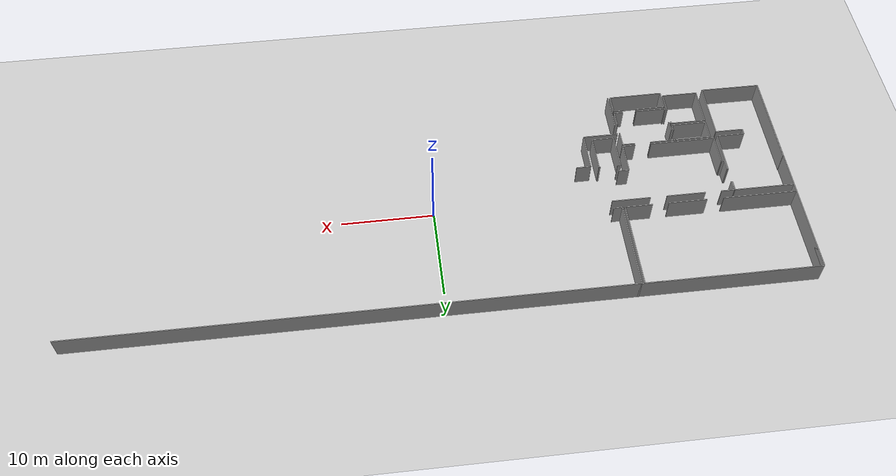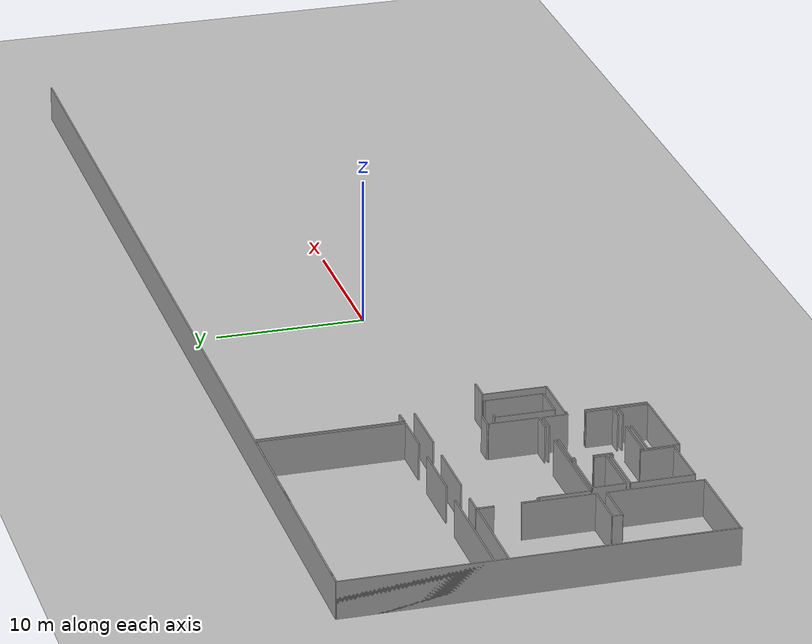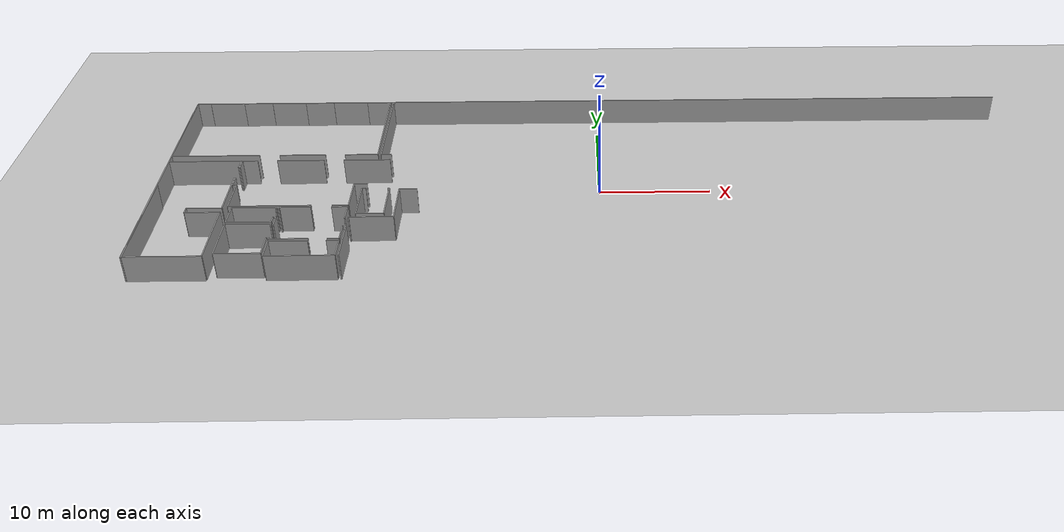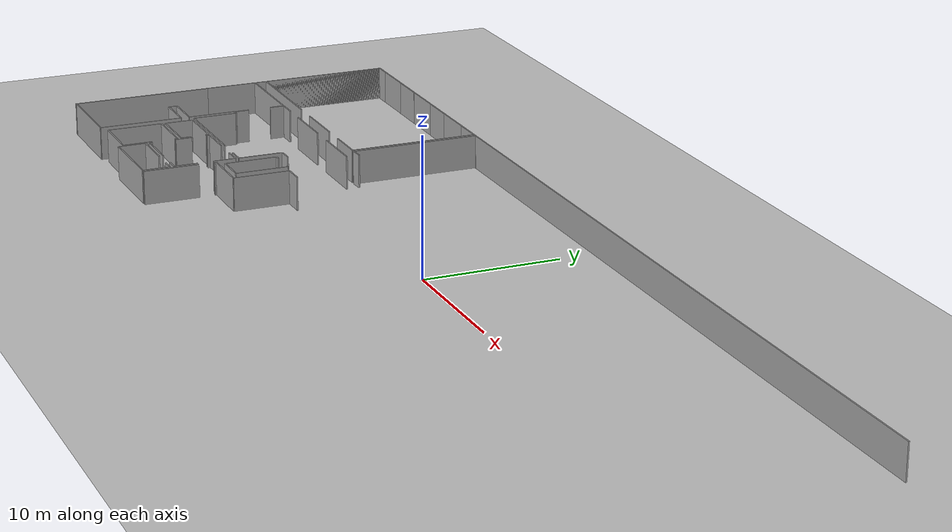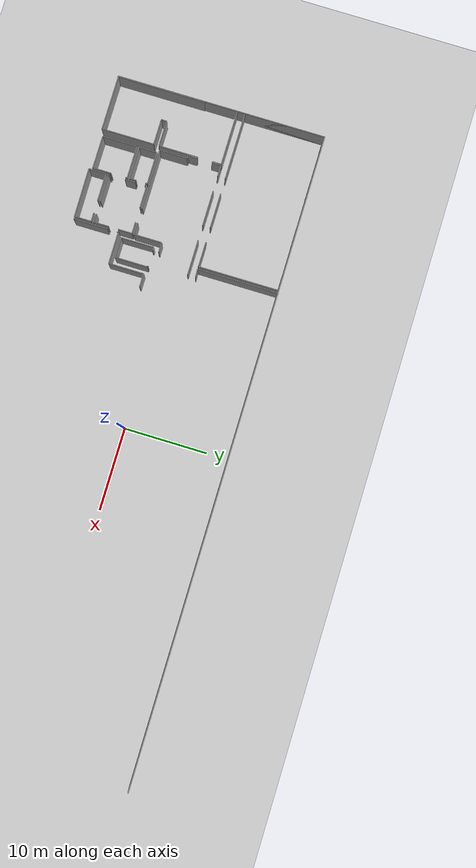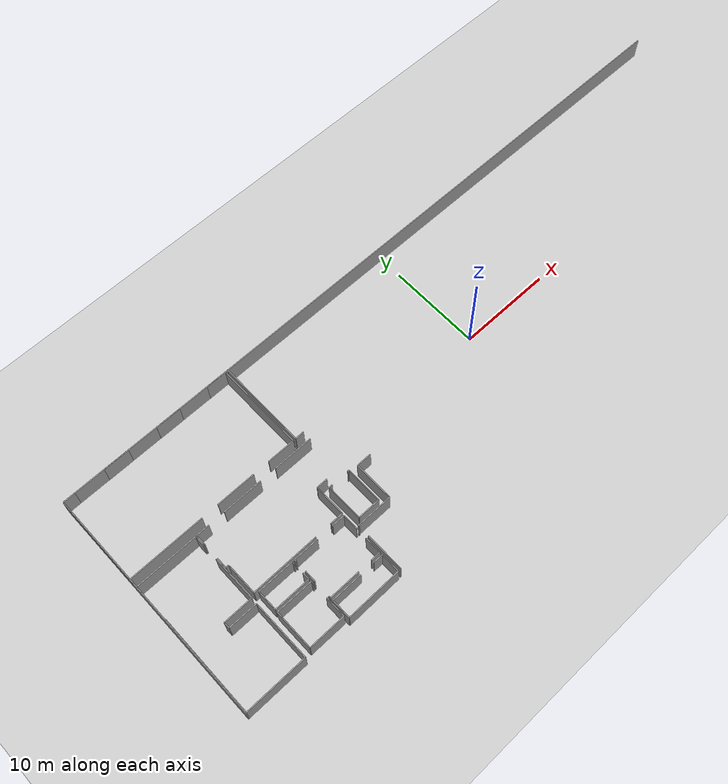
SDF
<sdf version="1.6">
 <world name="default">
  <model name="ground_plane">
   <static>1</static>
   <link name="link">
    <collision name="collision">
     <geometry><plane><normal>0 0 1</normal><size>100 100</size></plane></geometry>
     <surface><friction><ode><mu>100</mu><mu2>50</mu2></ode></friction></surface>
    </collision>
    <visual name="visual">
     <cast_shadows>0</cast_shadows>
     <geometry><plane><normal>0 0 1</normal><size>100 100</size></plane></geometry>
     <material>
      <script><uri>file://media/materials/scripts/gazebo.material</uri><name>Gazebo/Grey</name></script>
     </material>
    </visual>
   </link>
  </model>
  <model name="50052752">
   <static>1</static>
   <link name="Wall_0">
    <collision name="Wall_0_Collision">
     <geometry><box><size>2.99465783496 0.1 2.5</size></box></geometry>
     <pose>1.49732891748 0 1.25 0 0 0</pose>
    </collision>
    <visual name="Wall_0_Visual">
     <pose>1.49732891748 0 1.25 0 0 0</pose>
     <geometry><box><size>2.99465783496 0.1 2.5</size></box></geometry>
     <material>
      <script><uri>file://media/materials/scripts/gazebo.material</uri><name>Gazebo/Grey</name></script>
      <ambient>1 1 1 1</ambient>
     </material>
    </visual>
    <pose>18.7927468372 -9.64381336683 0 0 0 3.14159265359</pose>
   </link>
   <link name="Wall_1">
    <collision name="Wall_1_Collision">
     <geometry><box><size>4.19290164579 0.1 2.5</size></box></geometry>
     <pose>2.0964508229 0 1.25 0 0 0</pose>
    </collision>
    <visual name="Wall_1_Visual">
     <pose>2.0964508229 0 1.25 0 0 0</pose>
     <geometry><box><size>4.19290164579 0.1 2.5</size></box></geometry>
     <material>
      <script><uri>file://media/materials/scripts/gazebo.material</uri><name>Gazebo/Grey</name></script>
      <ambient>1 1 1 1</ambient>
     </material>
    </visual>
    <pose>14.0342862944 -9.64381336683 0 0 0 3.14159265359</pose>
   </link>
   <link name="Wall_2">
    <collision name="Wall_2_Collision">
     <geometry><box><size>8.03228139632 0.1 2.5</size></box></geometry>
     <pose>4.01614069816 0 1.25 0 0 0</pose>
    </collision>
    <visual name="Wall_2_Visual">
     <pose>4.01614069816 0 1.25 0 0 0</pose>
     <geometry><box><size>8.03228139632 0.1 2.5</size></box></geometry>
     <material>
      <script><uri>file://media/materials/scripts/gazebo.material</uri><name>Gazebo/Grey</name></script>
      <ambient>1 1 1 1</ambient>
     </material>
    </visual>
    <pose>8.03228139632 -9.64381336683 0 0 0 3.14159265359</pose>
   </link>
   <link name="Wall_3">
    <collision name="Wall_3_Collision">
     <geometry><box><size>9.63277373837 0.1 2.5</size></box></geometry>
     <pose>4.81638686919 0 1.25 0 0 0</pose>
    </collision>
    <visual name="Wall_3_Visual">
     <pose>4.81638686919 0 1.25 0 0 0</pose>
     <geometry><box><size>9.63277373837 0.1 2.5</size></box></geometry>
     <material>
      <script><uri>file://media/materials/scripts/gazebo.material</uri><name>Gazebo/Grey</name></script>
      <ambient>1 1 1 1</ambient>
     </material>
    </visual>
    <pose>0.0 -9.64381336683 0 0 0 1.57079632679</pose>
   </link>
   <link name="Wall_4">
    <collision name="Wall_4_Collision">
     <geometry><box><size>1.27323714898 0.1 2.5</size></box></geometry>
     <pose>0.636618574492 0 1.25 0 0 0</pose>
    </collision>
    <visual name="Wall_4_Visual">
     <pose>0.636618574492 0 1.25 0 0 0</pose>
     <geometry><box><size>1.27323714898 0.1 2.5</size></box></geometry>
     <material>
      <script><uri>file://media/materials/scripts/gazebo.material</uri><name>Gazebo/Grey</name></script>
      <ambient>1 1 1 1</ambient>
     </material>
    </visual>
    <pose>0.0 -0.0110396284594 0 0 0 0.0</pose>
   </link>
   <link name="Wall_5">
    <collision name="Wall_5_Collision">
     <geometry><box><size>2.74975573236 0.1 2.5</size></box></geometry>
     <pose>1.37487786618 0 1.25 0 0 0</pose>
    </collision>
    <visual name="Wall_5_Visual">
     <pose>1.37487786618 0 1.25 0 0 0</pose>
     <geometry><box><size>2.74975573236 0.1 2.5</size></box></geometry>
     <material>
      <script><uri>file://media/materials/scripts/gazebo.material</uri><name>Gazebo/Grey</name></script>
      <ambient>1 1 1 1</ambient>
     </material>
    </visual>
    <pose>4.53513012803 -0.0110396284594 0 0 0 0.0</pose>
   </link>
   <link name="Wall_6">
    <collision name="Wall_6_Collision">
     <geometry><box><size>2.73516312003 0.1 2.5</size></box></geometry>
     <pose>1.36758156001 0 1.25 0 0 0</pose>
    </collision>
    <visual name="Wall_6_Visual">
     <pose>1.36758156001 0 1.25 0 0 0</pose>
     <geometry><box><size>2.73516312003 0.1 2.5</size></box></geometry>
     <material>
      <script><uri>file://media/materials/scripts/gazebo.material</uri><name>Gazebo/Grey</name></script>
      <ambient>1 1 1 1</ambient>
     </material>
    </visual>
    <pose>10.5278718896 -0.0110396284594 0 0 0 0.0</pose>
   </link>
   <link name="Wall_7">
    <collision name="Wall_7_Collision">
     <geometry><box><size>2.25639854328 0.1 2.5</size></box></geometry>
     <pose>1.12819927164 0 1.25 0 0 0</pose>
    </collision>
    <visual name="Wall_7_Visual">
     <pose>1.12819927164 0 1.25 0 0 0</pose>
     <geometry><box><size>2.25639854328 0.1 2.5</size></box></geometry>
     <material>
      <script><uri>file://media/materials/scripts/gazebo.material</uri><name>Gazebo/Grey</name></script>
      <ambient>1 1 1 1</ambient>
     </material>
    </visual>
    <pose>16.5350793711 -0.0110396284594 0 0 0 0.0</pose>
   </link>
   <link name="Wall_8">
    <collision name="Wall_8_Collision">
     <geometry><box><size>9.63277382195 0.1 2.5</size></box></geometry>
     <pose>4.81638691098 0 1.25 0 0 0</pose>
    </collision>
    <visual name="Wall_8_Visual">
     <pose>4.81638691098 0 1.25 0 0 0</pose>
     <geometry><box><size>9.63277382195 0.1 2.5</size></box></geometry>
     <material>
      <script><uri>file://media/materials/scripts/gazebo.material</uri><name>Gazebo/Grey</name></script>
      <ambient>1 1 1 1</ambient>
     </material>
    </visual>
    <pose>18.7914779144 -0.0110396284594 0 0 0 -1.57066459705</pose>
   </link>
   <link name="Wall_9">
    <collision name="Wall_9_Collision">
     <geometry><box><size>10.5219079523 0.1 2.5</size></box></geometry>
     <pose>5.26095397617 0 1.25 0 0 0</pose>
    </collision>
    <visual name="Wall_9_Visual">
     <pose>5.26095397617 0 1.25 0 0 0</pose>
     <geometry><box><size>10.5219079523 0.1 2.5</size></box></geometry>
     <material>
      <script><uri>file://media/materials/scripts/gazebo.material</uri><name>Gazebo/Grey</name></script>
      <ambient>1 1 1 1</ambient>
     </material>
    </visual>
    <pose>0.0477114977096 -25.0307713782 0 0 0 1.57079632679</pose>
   </link>
   <link name="Wall_10">
    <collision name="Wall_10_Collision">
     <geometry><box><size>6.49993020925 0.1 2.5</size></box></geometry>
     <pose>3.24996510462 0 1.25 0 0 0</pose>
    </collision>
    <visual name="Wall_10_Visual">
     <pose>3.24996510462 0 1.25 0 0 0</pose>
     <geometry><box><size>6.49993020925 0.1 2.5</size></box></geometry>
     <material>
      <script><uri>file://media/materials/scripts/gazebo.material</uri><name>Gazebo/Grey</name></script>
      <ambient>1 1 1 1</ambient>
     </material>
    </visual>
    <pose>0.0477114977096 -10.5749489259 0 0 0 0.0</pose>
   </link>
   <link name="Wall_11">
    <collision name="Wall_11_Collision">
     <geometry><box><size>1.074650729 0.1 2.5</size></box></geometry>
     <pose>0.537325364498 0 1.25 0 0 0</pose>
    </collision>
    <visual name="Wall_11_Visual">
     <pose>0.537325364498 0 1.25 0 0 0</pose>
     <geometry><box><size>1.074650729 0.1 2.5</size></box></geometry>
     <material>
      <script><uri>file://media/materials/scripts/gazebo.material</uri><name>Gazebo/Grey</name></script>
      <ambient>1 1 1 1</ambient>
     </material>
    </visual>
    <pose>6.54764170695 -10.5749489259 0 0 0 -1.57079632679</pose>
   </link>
   <link name="Wall_12">
    <collision name="Wall_12_Collision">
     <geometry><box><size>4.73371654802 0.1 2.5</size></box></geometry>
     <pose>2.36685827401 0 1.25 0 0 0</pose>
    </collision>
    <visual name="Wall_12_Visual">
     <pose>2.36685827401 0 1.25 0 0 0</pose>
     <geometry><box><size>4.73371654802 0.1 2.5</size></box></geometry>
     <material>
      <script><uri>file://media/materials/scripts/gazebo.material</uri><name>Gazebo/Grey</name></script>
      <ambient>1 1 1 1</ambient>
     </material>
    </visual>
    <pose>6.54764170695 -13.3843440304 0 0 0 -1.57079632679</pose>
   </link>
   <link name="Wall_13">
    <collision name="Wall_13_Collision">
     <geometry><box><size>3.04655677795 0.1 2.5</size></box></geometry>
     <pose>1.52327838898 0 1.25 0 0 0</pose>
    </collision>
    <visual name="Wall_13_Visual">
     <pose>1.52327838898 0 1.25 0 0 0</pose>
     <geometry><box><size>3.04655677795 0.1 2.5</size></box></geometry>
     <material>
      <script><uri>file://media/materials/scripts/gazebo.material</uri><name>Gazebo/Grey</name></script>
      <ambient>1 1 1 1</ambient>
     </material>
    </visual>
    <pose>6.54764170695 -18.1180605784 0 0 0 3.14159265359</pose>
   </link>
   <link name="Wall_14">
    <collision name="Wall_14_Collision">
     <geometry><box><size>0.639917773802 0.1 2.5</size></box></geometry>
     <pose>0.319958886901 0 1.25 0 0 0</pose>
    </collision>
    <visual name="Wall_14_Visual">
     <pose>0.319958886901 0 1.25 0 0 0</pose>
     <geometry><box><size>0.639917773802 0.1 2.5</size></box></geometry>
     <material>
      <script><uri>file://media/materials/scripts/gazebo.material</uri><name>Gazebo/Grey</name></script>
      <ambient>1 1 1 1</ambient>
     </material>
    </visual>
    <pose>3.501084929 -18.1180605784 0 0 0 -1.57079632679</pose>
   </link>
   <link name="Wall_15">
    <collision name="Wall_15_Collision">
     <geometry><box><size>3.03437511896 0.1 2.5</size></box></geometry>
     <pose>1.51718755948 0 1.25 0 0 0</pose>
    </collision>
    <visual name="Wall_15_Visual">
     <pose>1.51718755948 0 1.25 0 0 0</pose>
     <geometry><box><size>3.03437511896 0.1 2.5</size></box></geometry>
     <material>
      <script><uri>file://media/materials/scripts/gazebo.material</uri><name>Gazebo/Grey</name></script>
      <ambient>1 1 1 1</ambient>
     </material>
    </visual>
    <pose>3.501084929 -18.7579783522 0 0 0 0.0</pose>
   </link>
   <link name="Wall_16">
    <collision name="Wall_16_Collision">
     <geometry><box><size>6.27837628637 0.1 2.5</size></box></geometry>
     <pose>3.13918814319 0 1.25 0 0 0</pose>
    </collision>
    <visual name="Wall_16_Visual">
     <pose>3.13918814319 0 1.25 0 0 0</pose>
     <geometry><box><size>6.27837628637 0.1 2.5</size></box></geometry>
     <material>
      <script><uri>file://media/materials/scripts/gazebo.material</uri><name>Gazebo/Grey</name></script>
      <ambient>1 1 1 1</ambient>
     </material>
    </visual>
    <pose>6.53546004797 -18.7579783522 0 0 0 -1.57079632679</pose>
   </link>
   <link name="Wall_17">
    <collision name="Wall_17_Collision">
     <geometry><box><size>6.48775095269 0.1 2.5</size></box></geometry>
     <pose>3.24387547635 0 1.25 0 0 0</pose>
    </collision>
    <visual name="Wall_17_Visual">
     <pose>3.24387547635 0 1.25 0 0 0</pose>
     <geometry><box><size>6.48775095269 0.1 2.5</size></box></geometry>
     <material>
      <script><uri>file://media/materials/scripts/gazebo.material</uri><name>Gazebo/Grey</name></script>
      <ambient>1 1 1 1</ambient>
     </material>
    </visual>
    <pose>6.53546004797 -25.0363546385 0 0 0 3.1407320686</pose>
   </link>
   <link name="Wall_18">
    <collision name="Wall_18_Collision">
     <geometry><box><size>1.14647176012 0.1 2.5</size></box></geometry>
     <pose>0.573235880061 0 1.25 0 0 0</pose>
    </collision>
    <visual name="Wall_18_Visual">
     <pose>0.573235880061 0 1.25 0 0 0</pose>
     <geometry><box><size>1.14647176012 0.1 2.5</size></box></geometry>
     <material>
      <script><uri>file://media/materials/scripts/gazebo.material</uri><name>Gazebo/Grey</name></script>
      <ambient>1 1 1 1</ambient>
     </material>
    </visual>
    <pose>6.65664217646 -14.5567018158 0 0 0 1.57079632679</pose>
   </link>
   <link name="Wall_19">
    <collision name="Wall_19_Collision">
     <geometry><box><size>1.11728653546 0.1 2.5</size></box></geometry>
     <pose>0.55864326773 0 1.25 0 0 0</pose>
    </collision>
    <visual name="Wall_19_Visual">
     <pose>0.55864326773 0 1.25 0 0 0</pose>
     <geometry><box><size>1.11728653546 0.1 2.5</size></box></geometry>
     <material>
      <script><uri>file://media/materials/scripts/gazebo.material</uri><name>Gazebo/Grey</name></script>
      <ambient>1 1 1 1</ambient>
     </material>
    </visual>
    <pose>6.65664217646 -11.6824647557 0 0 0 1.57079632679</pose>
   </link>
   <link name="Wall_20">
    <collision name="Wall_20_Collision">
     <geometry><box><size>1.38274518761 0.1 2.5</size></box></geometry>
     <pose>0.691372593805 0 1.25 0 0 0</pose>
    </collision>
    <visual name="Wall_20_Visual">
     <pose>0.691372593805 0 1.25 0 0 0</pose>
     <geometry><box><size>1.38274518761 0.1 2.5</size></box></geometry>
     <material>
      <script><uri>file://media/materials/scripts/gazebo.material</uri><name>Gazebo/Grey</name></script>
      <ambient>1 1 1 1</ambient>
     </material>
    </visual>
    <pose>6.65664217646 -10.5651782202 0 0 0 0.0</pose>
   </link>
   <link name="Wall_21">
    <collision name="Wall_21_Collision">
     <geometry><box><size>4.23135000698 0.1 2.5</size></box></geometry>
     <pose>2.11567500349 0 1.25 0 0 0</pose>
    </collision>
    <visual name="Wall_21_Visual">
     <pose>2.11567500349 0 1.25 0 0 0</pose>
     <geometry><box><size>4.23135000698 0.1 2.5</size></box></geometry>
     <material>
      <script><uri>file://media/materials/scripts/gazebo.material</uri><name>Gazebo/Grey</name></script>
      <ambient>1 1 1 1</ambient>
     </material>
    </visual>
    <pose>9.80306317967 -10.5651782202 0 0 0 0.0</pose>
   </link>
   <link name="Wall_22">
    <collision name="Wall_22_Collision">
     <geometry><box><size>4.20076896722 0.1 2.5</size></box></geometry>
     <pose>2.10038448361 0 1.25 0 0 0</pose>
    </collision>
    <visual name="Wall_22_Visual">
     <pose>2.10038448361 0 1.25 0 0 0</pose>
     <geometry><box><size>4.20076896722 0.1 2.5</size></box></geometry>
     <material>
      <script><uri>file://media/materials/scripts/gazebo.material</uri><name>Gazebo/Grey</name></script>
      <ambient>1 1 1 1</ambient>
     </material>
    </visual>
    <pose>15.8241019199 -10.5651782202 0 0 0 0.0</pose>
   </link>
   <link name="Wall_43">
    <collision name="Wall_43_Collision">
     <geometry><box><size>1.16956615529 0.1 2.5</size></box></geometry>
     <pose>0.584783077645 0 1.25 0 0 0</pose>
    </collision>
    <visual name="Wall_43_Visual">
     <pose>0.584783077645 0 1.25 0 0 0</pose>
     <geometry><box><size>1.16956615529 0.1 2.5</size></box></geometry>
     <material>
      <script><uri>file://media/materials/scripts/gazebo.material</uri><name>Gazebo/Grey</name></script>
      <ambient>1 1 1 1</ambient>
     </material>
    </visual>
    <pose>18.4964533607 -14.5209181925 0 0 0 3.14159265359</pose>
   </link>
   <link name="Wall_44">
    <collision name="Wall_44_Collision">
     <geometry><box><size>0.32743984575 0.1 2.5</size></box></geometry>
     <pose>0.163719922875 0 1.25 0 0 0</pose>
    </collision>
    <visual name="Wall_44_Visual">
     <pose>0.163719922875 0 1.25 0 0 0</pose>
     <geometry><box><size>0.32743984575 0.1 2.5</size></box></geometry>
     <material>
      <script><uri>file://media/materials/scripts/gazebo.material</uri><name>Gazebo/Grey</name></script>
      <ambient>1 1 1 1</ambient>
     </material>
    </visual>
    <pose>6.98212087759 -14.5209181925 0 0 0 -3.03209090757</pose>
   </link>
   <link name="Wall_45">
    <collision name="Wall_45_Collision">
     <geometry><box><size>9.65650259495 0.1 2.5</size></box></geometry>
     <pose>4.82825129747 0 1.25 0 0 0</pose>
    </collision>
    <visual name="Wall_45_Visual">
     <pose>4.82825129747 0 1.25 0 0 0</pose>
     <geometry><box><size>9.65650259495 0.1 2.5</size></box></geometry>
     <material>
      <script><uri>file://media/materials/scripts/gazebo.material</uri><name>Gazebo/Grey</name></script>
      <ambient>1 1 1 1</ambient>
     </material>
    </visual>
    <pose>19.0845990838 -9.65650259495 0 0 0 1.57079632679</pose>
   </link>
   <link name="Wall_46">
    <collision name="Wall_46_Collision">
     <geometry><box><size>0.190338421714 0.1 2.5</size></box></geometry>
     <pose>0.0951692108569 0 1.25 0 0 0</pose>
    </collision>
    <visual name="Wall_46_Visual">
     <pose>0.0951692108569 0 1.25 0 0 0</pose>
     <geometry><box><size>0.190338421714 0.1 2.5</size></box></geometry>
     <material>
      <script><uri>file://media/materials/scripts/gazebo.material</uri><name>Gazebo/Grey</name></script>
      <ambient>1 1 1 1</ambient>
     </material>
    </visual>
    <pose>19.0845990838 -0.0 0 0 0 0.0</pose>
   </link>
   <link name="Wall_52">
    <collision name="Wall_52_Collision">
     <geometry><box><size>0.957011405348 0.1 2.5</size></box></geometry>
     <pose>0.478505702674 0 1.25 0 0 0</pose>
    </collision>
    <visual name="Wall_52_Visual">
     <pose>0.478505702674 0 1.25 0 0 0</pose>
     <geometry><box><size>0.957011405348 0.1 2.5</size></box></geometry>
     <material>
      <script><uri>file://media/materials/scripts/gazebo.material</uri><name>Gazebo/Grey</name></script>
      <ambient>1 1 1 1</ambient>
     </material>
    </visual>
    <pose>20.0407324222 -9.61551638814 0 0 0 -3.09875225873</pose>
   </link>
   <link name="Wall_159">
    <collision name="Wall_159_Collision">
     <geometry><box><size>2.38468663951 0.1 2.5</size></box></geometry>
     <pose>1.19234331976 0 1.25 0 0 0</pose>
    </collision>
    <visual name="Wall_159_Visual">
     <pose>1.19234331976 0 1.25 0 0 0</pose>
     <geometry><box><size>2.38468663951 0.1 2.5</size></box></geometry>
     <material>
      <script><uri>file://media/materials/scripts/gazebo.material</uri><name>Gazebo/Grey</name></script>
      <ambient>1 1 1 1</ambient>
     </material>
    </visual>
    <pose>18.1310035911 -19.1664446052 0 0 0 0.0</pose>
   </link>
   <link name="Wall_160">
    <collision name="Wall_160_Collision">
     <geometry><box><size>3.90625198269 0.1 2.5</size></box></geometry>
     <pose>1.95312599135 0 1.25 0 0 0</pose>
    </collision>
    <visual name="Wall_160_Visual">
     <pose>1.95312599135 0 1.25 0 0 0</pose>
     <geometry><box><size>3.90625198269 0.1 2.5</size></box></geometry>
     <material>
      <script><uri>file://media/materials/scripts/gazebo.material</uri><name>Gazebo/Grey</name></script>
      <ambient>1 1 1 1</ambient>
     </material>
    </visual>
    <pose>20.5156902306 -19.1664446052 0 0 0 1.57079632679</pose>
   </link>
   <link name="Wall_161">
    <collision name="Wall_161_Collision">
     <geometry><box><size>0.148717753499 0.1 2.5</size></box></geometry>
     <pose>0.0743588767495 0 1.25 0 0 0</pose>
    </collision>
    <visual name="Wall_161_Visual">
     <pose>0.0743588767495 0 1.25 0 0 0</pose>
     <geometry><box><size>0.148717753499 0.1 2.5</size></box></geometry>
     <material>
      <script><uri>file://media/materials/scripts/gazebo.material</uri><name>Gazebo/Grey</name></script>
      <ambient>1 1 1 1</ambient>
     </material>
    </visual>
    <pose>20.5156902306 -15.2601926225 0 0 0 3.14159265359</pose>
   </link>
   <link name="Wall_162">
    <collision name="Wall_162_Collision">
     <geometry><box><size>0.362785031787 0.1 2.5</size></box></geometry>
     <pose>0.181392515893 0 1.25 0 0 0</pose>
    </collision>
    <visual name="Wall_162_Visual">
     <pose>0.181392515893 0 1.25 0 0 0</pose>
     <geometry><box><size>0.362785031787 0.1 2.5</size></box></geometry>
     <material>
      <script><uri>file://media/materials/scripts/gazebo.material</uri><name>Gazebo/Grey</name></script>
      <ambient>1 1 1 1</ambient>
     </material>
    </visual>
    <pose>18.472216935 -15.2601926225 0 0 0 3.14159265359</pose>
   </link>
   <link name="Wall_163">
    <collision name="Wall_163_Collision">
     <geometry><box><size>3.90631154543 0.1 2.5</size></box></geometry>
     <pose>1.95315577272 0 1.25 0 0 0</pose>
    </collision>
    <visual name="Wall_163_Visual">
     <pose>1.95315577272 0 1.25 0 0 0</pose>
     <geometry><box><size>3.90631154543 0.1 2.5</size></box></geometry>
     <material>
      <script><uri>file://media/materials/scripts/gazebo.material</uri><name>Gazebo/Grey</name></script>
      <ambient>1 1 1 1</ambient>
     </material>
    </visual>
    <pose>18.1094319033 -15.2601926225 0 0 0 -1.56527403366</pose>
   </link>
   <link name="Wall_164">
    <collision name="Wall_164_Collision">
     <geometry><box><size>3.29577321812 0.1 2.5</size></box></geometry>
     <pose>1.64788660906 0 1.25 0 0 0</pose>
    </collision>
    <visual name="Wall_164_Visual">
     <pose>1.64788660906 0 1.25 0 0 0</pose>
     <geometry><box><size>3.29577321812 0.1 2.5</size></box></geometry>
     <material>
      <script><uri>file://media/materials/scripts/gazebo.material</uri><name>Gazebo/Grey</name></script>
      <ambient>1 1 1 1</ambient>
     </material>
    </visual>
    <pose>6.9880848148 -17.8910502874 0 0 0 1.57079632679</pose>
   </link>
   <link name="Wall_165">
    <collision name="Wall_165_Collision">
     <geometry><box><size>3.27179057698 0.1 2.5</size></box></geometry>
     <pose>1.63589528849 0 1.25 0 0 0</pose>
    </collision>
    <visual name="Wall_165_Visual">
     <pose>1.63589528849 0 1.25 0 0 0</pose>
     <geometry><box><size>3.27179057698 0.1 2.5</size></box></geometry>
     <material>
      <script><uri>file://media/materials/scripts/gazebo.material</uri><name>Gazebo/Grey</name></script>
      <ambient>1 1 1 1</ambient>
     </material>
    </visual>
    <pose>17.3334856041 -14.5952770693 0 0 0 -1.57079632679</pose>
   </link>
   <link name="Wall_166">
    <collision name="Wall_166_Collision">
     <geometry><box><size>1.39936807644 0.1 2.5</size></box></geometry>
     <pose>0.69968403822 0 1.25 0 0 0</pose>
    </collision>
    <visual name="Wall_166_Visual">
     <pose>0.69968403822 0 1.25 0 0 0</pose>
     <geometry><box><size>1.39936807644 0.1 2.5</size></box></geometry>
     <material>
      <script><uri>file://media/materials/scripts/gazebo.material</uri><name>Gazebo/Grey</name></script>
      <ambient>1 1 1 1</ambient>
     </material>
    </visual>
    <pose>17.3334856041 -17.8670676463 0 0 0 3.14159265359</pose>
   </link>
   <link name="Wall_167">
    <collision name="Wall_167_Collision">
     <geometry><box><size>7.16145982807 0.1 2.5</size></box></geometry>
     <pose>3.58072991403 0 1.25 0 0 0</pose>
    </collision>
    <visual name="Wall_167_Visual">
     <pose>3.58072991403 0 1.25 0 0 0</pose>
     <geometry><box><size>7.16145982807 0.1 2.5</size></box></geometry>
     <material>
      <script><uri>file://media/materials/scripts/gazebo.material</uri><name>Gazebo/Grey</name></script>
      <ambient>1 1 1 1</ambient>
     </material>
    </visual>
    <pose>14.1495044856 -17.8670676463 0 0 0 -3.13824379923</pose>
   </link>
   <link name="Wall_168">
    <collision name="Wall_168_Collision">
     <geometry><box><size>0.208610910198 0.1 2.5</size></box></geometry>
     <pose>0.104305455099 0 1.25 0 0 0</pose>
    </collision>
    <visual name="Wall_168_Visual">
     <pose>0.104305455099 0 1.25 0 0 0</pose>
     <geometry><box><size>0.208610910198 0.1 2.5</size></box></geometry>
     <material>
      <script><uri>file://media/materials/scripts/gazebo.material</uri><name>Gazebo/Grey</name></script>
      <ambient>1 1 1 1</ambient>
     </material>
    </visual>
    <pose>11.4499980966 -22.7508977629 0 0 0 1.57079632679</pose>
   </link>
   <link name="Wall_169">
    <collision name="Wall_169_Collision">
     <geometry><box><size>1.23580392605 0.1 2.5</size></box></geometry>
     <pose>0.617901963024 0 1.25 0 0 0</pose>
    </collision>
    <visual name="Wall_169_Visual">
     <pose>0.617901963024 0 1.25 0 0 0</pose>
     <geometry><box><size>1.23580392605 0.1 2.5</size></box></geometry>
     <material>
      <script><uri>file://media/materials/scripts/gazebo.material</uri><name>Gazebo/Grey</name></script>
      <ambient>1 1 1 1</ambient>
     </material>
    </visual>
    <pose>11.4499980966 -20.7440963366 0 0 0 1.57079632679</pose>
   </link>
   <link name="Wall_170">
    <collision name="Wall_170_Collision">
     <geometry><box><size>0.224853122185 0.1 2.5</size></box></geometry>
     <pose>0.112426561092 0 1.25 0 0 0</pose>
    </collision>
    <visual name="Wall_170_Visual">
     <pose>0.112426561092 0 1.25 0 0 0</pose>
     <geometry><box><size>0.224853122185 0.1 2.5</size></box></geometry>
     <material>
      <script><uri>file://media/materials/scripts/gazebo.material</uri><name>Gazebo/Grey</name></script>
      <ambient>1 1 1 1</ambient>
     </material>
    </visual>
    <pose>11.4499980966 -18.335427056 0 0 0 1.57079632679</pose>
   </link>
   <link name="Wall_171">
    <collision name="Wall_171_Collision">
     <geometry><box><size>2.68364485388 0.1 2.5</size></box></geometry>
     <pose>1.34182242694 0 1.25 0 0 0</pose>
    </collision>
    <visual name="Wall_171_Visual">
     <pose>1.34182242694 0 1.25 0 0 0</pose>
     <geometry><box><size>2.68364485388 0.1 2.5</size></box></geometry>
     <material>
      <script><uri>file://media/materials/scripts/gazebo.material</uri><name>Gazebo/Grey</name></script>
      <ambient>1 1 1 1</ambient>
     </material>
    </visual>
    <pose>11.4499980966 -18.1105739338 0 0 0 0.0</pose>
   </link>
   <link name="Wall_172">
    <collision name="Wall_172_Collision">
     <geometry><box><size>1.38160315708 0.1 2.5</size></box></geometry>
     <pose>0.69080157854 0 1.25 0 0 0</pose>
    </collision>
    <visual name="Wall_172_Visual">
     <pose>0.69080157854 0 1.25 0 0 0</pose>
     <geometry><box><size>1.38160315708 0.1 2.5</size></box></geometry>
     <material>
      <script><uri>file://media/materials/scripts/gazebo.material</uri><name>Gazebo/Grey</name></script>
      <ambient>1 1 1 1</ambient>
     </material>
    </visual>
    <pose>15.9124189476 -18.1105739338 0 0 0 0.0</pose>
   </link>
   <link name="Wall_173">
    <collision name="Wall_173_Collision">
     <geometry><box><size>1.66596875912 0.1 2.5</size></box></geometry>
     <pose>0.83298437956 0 1.25 0 0 0</pose>
    </collision>
    <visual name="Wall_173_Visual">
     <pose>0.83298437956 0 1.25 0 0 0</pose>
     <geometry><box><size>1.66596875912 0.1 2.5</size></box></geometry>
     <material>
      <script><uri>file://media/materials/scripts/gazebo.material</uri><name>Gazebo/Grey</name></script>
      <ambient>1 1 1 1</ambient>
     </material>
    </visual>
    <pose>17.2940221046 -18.1105739338 0 0 0 -1.57079632679</pose>
   </link>
   <link name="Wall_174">
    <collision name="Wall_174_Collision">
     <geometry><box><size>1.78232898093 0.1 2.5</size></box></geometry>
     <pose>0.891164490464 0 1.25 0 0 0</pose>
    </collision>
    <visual name="Wall_174_Visual">
     <pose>0.891164490464 0 1.25 0 0 0</pose>
     <geometry><box><size>1.78232898093 0.1 2.5</size></box></geometry>
     <material>
      <script><uri>file://media/materials/scripts/gazebo.material</uri><name>Gazebo/Grey</name></script>
      <ambient>1 1 1 1</ambient>
     </material>
    </visual>
    <pose>17.2940221046 -20.9570215844 0 0 0 -1.57079632679</pose>
   </link>
   <link name="Wall_175">
    <collision name="Wall_175_Collision">
     <geometry><box><size>1.01285418808 0.1 2.5</size></box></geometry>
     <pose>0.50642709404 0 1.25 0 0 0</pose>
    </collision>
    <visual name="Wall_175_Visual">
     <pose>0.50642709404 0 1.25 0 0 0</pose>
     <geometry><box><size>1.01285418808 0.1 2.5</size></box></geometry>
     <material>
      <script><uri>file://media/materials/scripts/gazebo.material</uri><name>Gazebo/Grey</name></script>
      <ambient>1 1 1 1</ambient>
     </material>
    </visual>
    <pose>17.2940221046 -22.7393505653 0 0 0 3.14159265359</pose>
   </link>
   <link name="Wall_176">
    <collision name="Wall_176_Collision">
     <geometry><box><size>3.29566655515 0.1 2.5</size></box></geometry>
     <pose>1.64783327758 0 1.25 0 0 0</pose>
    </collision>
    <visual name="Wall_176_Visual">
     <pose>1.64783327758 0 1.25 0 0 0</pose>
     <geometry><box><size>3.29566655515 0.1 2.5</size></box></geometry>
     <material>
      <script><uri>file://media/materials/scripts/gazebo.material</uri><name>Gazebo/Grey</name></script>
      <ambient>1 1 1 1</ambient>
     </material>
    </visual>
    <pose>14.7456444224 -22.7393505653 0 0 0 -3.13808889463</pose>
   </link>
   <link name="Wall_177">
    <collision name="Wall_177_Collision">
     <geometry><box><size>2.06707525981 0.1 2.5</size></box></geometry>
     <pose>1.03353762991 0 1.25 0 0 0</pose>
    </collision>
    <visual name="Wall_177_Visual">
     <pose>1.03353762991 0 1.25 0 0 0</pose>
     <geometry><box><size>2.06707525981 0.1 2.5</size></box></geometry>
     <material>
      <script><uri>file://media/materials/scripts/gazebo.material</uri><name>Gazebo/Grey</name></script>
      <ambient>1 1 1 1</ambient>
     </material>
    </visual>
    <pose>11.4621797556 -25.1107135153 0 0 0 1.57079632679</pose>
   </link>
   <link name="Wall_178">
    <collision name="Wall_178_Collision">
     <geometry><box><size>3.27001408504 0.1 2.5</size></box></geometry>
     <pose>1.63500704252 0 1.25 0 0 0</pose>
    </collision>
    <visual name="Wall_178_Visual">
     <pose>1.63500704252 0 1.25 0 0 0</pose>
     <geometry><box><size>3.27001408504 0.1 2.5</size></box></geometry>
     <material>
      <script><uri>file://media/materials/scripts/gazebo.material</uri><name>Gazebo/Grey</name></script>
      <ambient>1 1 1 1</ambient>
     </material>
    </visual>
    <pose>11.4621797556 -23.0436382555 0 0 0 0.0</pose>
   </link>
   <link name="Wall_179">
    <collision name="Wall_179_Collision">
     <geometry><box><size>1.04584618118 0.1 2.5</size></box></geometry>
     <pose>0.522923090588 0 1.25 0 0 0</pose>
    </collision>
    <visual name="Wall_179_Visual">
     <pose>0.522923090588 0 1.25 0 0 0</pose>
     <geometry><box><size>1.04584618118 0.1 2.5</size></box></geometry>
     <material>
      <script><uri>file://media/materials/scripts/gazebo.material</uri><name>Gazebo/Grey</name></script>
      <ambient>1 1 1 1</ambient>
     </material>
    </visual>
    <pose>16.2603575824 -23.0436382555 0 0 0 0.0</pose>
   </link>
   <link name="Wall_180">
    <collision name="Wall_180_Collision">
     <geometry><box><size>2.01961754666 0.1 2.5</size></box></geometry>
     <pose>1.00980877333 0 1.25 0 0 0</pose>
    </collision>
    <visual name="Wall_180_Visual">
     <pose>1.00980877333 0 1.25 0 0 0</pose>
     <geometry><box><size>2.01961754666 0.1 2.5</size></box></geometry>
     <material>
      <script><uri>file://media/materials/scripts/gazebo.material</uri><name>Gazebo/Grey</name></script>
      <ambient>1 1 1 1</ambient>
     </material>
    </visual>
    <pose>17.3062037636 -23.0436382555 0 0 0 -1.57079632679</pose>
   </link>
   <link name="Wall_181">
    <collision name="Wall_181_Collision">
     <geometry><box><size>5.84421670037 0.1 2.5</size></box></geometry>
     <pose>2.92210835018 0 1.25 0 0 0</pose>
    </collision>
    <visual name="Wall_181_Visual">
     <pose>2.92210835018 0 1.25 0 0 0</pose>
     <geometry><box><size>5.84421670037 0.1 2.5</size></box></geometry>
     <material>
      <script><uri>file://media/materials/scripts/gazebo.material</uri><name>Gazebo/Grey</name></script>
      <ambient>1 1 1 1</ambient>
     </material>
    </visual>
    <pose>17.3062037636 -25.0632558021 0 0 0 -3.13347210687</pose>
   </link>
   <link name="Wall_182">
    <collision name="Wall_182_Collision">
     <geometry><box><size>4.14887002424 0.1 2.5</size></box></geometry>
     <pose>2.07443501212 0 1.25 0 0 0</pose>
    </collision>
    <visual name="Wall_182_Visual">
     <pose>2.07443501212 0 1.25 0 0 0</pose>
     <geometry><box><size>4.14887002424 0.1 2.5</size></box></geometry>
     <material>
      <script><uri>file://media/materials/scripts/gazebo.material</uri><name>Gazebo/Grey</name></script>
      <ambient>1 1 1 1</ambient>
     </material>
    </visual>
    <pose>7.34097224866 -24.6943799409 0 0 0 1.57079632679</pose>
   </link>
   <link name="Wall_183">
    <collision name="Wall_183_Collision">
     <geometry><box><size>3.89508546195 0.1 2.5</size></box></geometry>
     <pose>1.94754273098 0 1.25 0 0 0</pose>
    </collision>
    <visual name="Wall_183_Visual">
     <pose>1.94754273098 0 1.25 0 0 0</pose>
     <geometry><box><size>3.89508546195 0.1 2.5</size></box></geometry>
     <material>
      <script><uri>file://media/materials/scripts/gazebo.material</uri><name>Gazebo/Grey</name></script>
      <ambient>1 1 1 1</ambient>
     </material>
    </visual>
    <pose>7.34097224866 -20.5455099166 0 0 0 0.0</pose>
   </link>
   <link name="Wall_184">
    <collision name="Wall_184_Collision">
     <geometry><box><size>0.209626048447 0.1 2.5</size></box></geometry>
     <pose>0.104813024224 0 1.25 0 0 0</pose>
    </collision>
    <visual name="Wall_184_Visual">
     <pose>0.104813024224 0 1.25 0 0 0</pose>
     <geometry><box><size>0.209626048447 0.1 2.5</size></box></geometry>
     <material>
      <script><uri>file://media/materials/scripts/gazebo.material</uri><name>Gazebo/Grey</name></script>
      <ambient>1 1 1 1</ambient>
     </material>
    </visual>
    <pose>11.2360577106 -20.5455099166 0 0 0 -1.57079632679</pose>
   </link>
   <link name="Wall_185">
    <collision name="Wall_185_Collision">
     <geometry><box><size>2.20691055363 0.1 2.5</size></box></geometry>
     <pose>1.10345527682 0 1.25 0 0 0</pose>
    </collision>
    <visual name="Wall_185_Visual">
     <pose>1.10345527682 0 1.25 0 0 0</pose>
     <geometry><box><size>2.20691055363 0.1 2.5</size></box></geometry>
     <material>
      <script><uri>file://media/materials/scripts/gazebo.material</uri><name>Gazebo/Grey</name></script>
      <ambient>1 1 1 1</ambient>
     </material>
    </visual>
    <pose>11.2360577106 -22.4985090157 0 0 0 -1.57079632679</pose>
   </link>
   <link name="Wall_186">
    <collision name="Wall_186_Collision">
     <geometry><box><size>3.89510110643 0.1 2.5</size></box></geometry>
     <pose>1.94755055321 0 1.25 0 0 0</pose>
    </collision>
    <visual name="Wall_186_Visual">
     <pose>1.94755055321 0 1.25 0 0 0</pose>
     <geometry><box><size>3.89510110643 0.1 2.5</size></box></geometry>
     <material>
      <script><uri>file://media/materials/scripts/gazebo.material</uri><name>Gazebo/Grey</name></script>
      <ambient>1 1 1 1</ambient>
     </material>
    </visual>
    <pose>11.2360577106 -24.7054195693 0 0 0 3.13875841567</pose>
   </link>
   <link name="Wall_187">
    <collision name="Wall_187_Collision">
     <geometry><box><size>2.15158551905 0.1 2.5</size></box></geometry>
     <pose>1.07579275953 0 1.25 0 0 0</pose>
    </collision>
    <visual name="Wall_187_Visual">
     <pose>1.07579275953 0 1.25 0 0 0</pose>
     <geometry><box><size>2.15158551905 0.1 2.5</size></box></geometry>
     <material>
      <script><uri>file://media/materials/scripts/gazebo.material</uri><name>Gazebo/Grey</name></script>
      <ambient>1 1 1 1</ambient>
     </material>
    </visual>
    <pose>7.36305150558 -20.2696460974 0 0 0 1.57079632679</pose>
   </link>
   <link name="Wall_188">
    <collision name="Wall_188_Collision">
     <geometry><box><size>3.83671501263 0.1 2.5</size></box></geometry>
     <pose>1.91835750631 0 1.25 0 0 0</pose>
    </collision>
    <visual name="Wall_188_Visual">
     <pose>1.91835750631 0 1.25 0 0 0</pose>
     <geometry><box><size>3.83671501263 0.1 2.5</size></box></geometry>
     <material>
      <script><uri>file://media/materials/scripts/gazebo.material</uri><name>Gazebo/Grey</name></script>
      <ambient>1 1 1 1</ambient>
     </material>
    </visual>
    <pose>7.36305150558 -18.1180605784 0 0 0 0.0</pose>
   </link>
   <link name="Wall_189">
    <collision name="Wall_189_Collision">
     <geometry><box><size>0.210894971259 0.1 2.5</size></box></geometry>
     <pose>0.105447485629 0 1.25 0 0 0</pose>
    </collision>
    <visual name="Wall_189_Visual">
     <pose>0.105447485629 0 1.25 0 0 0</pose>
     <geometry><box><size>0.210894971259 0.1 2.5</size></box></geometry>
     <material>
      <script><uri>file://media/materials/scripts/gazebo.material</uri><name>Gazebo/Grey</name></script>
      <ambient>1 1 1 1</ambient>
     </material>
    </visual>
    <pose>11.1997665182 -18.1180605784 0 0 0 -1.57079632679</pose>
   </link>
   <link name="Wall_190">
    <collision name="Wall_190_Collision">
     <geometry><box><size>0.775946299187 0.1 2.5</size></box></geometry>
     <pose>0.387973149593 0 1.25 0 0 0</pose>
    </collision>
    <visual name="Wall_190_Visual">
     <pose>0.387973149593 0 1.25 0 0 0</pose>
     <geometry><box><size>0.775946299187 0.1 2.5</size></box></geometry>
     <material>
      <script><uri>file://media/materials/scripts/gazebo.material</uri><name>Gazebo/Grey</name></script>
      <ambient>1 1 1 1</ambient>
     </material>
    </visual>
    <pose>11.1997665182 -19.488624107 0 0 0 -1.57079632679</pose>
   </link>
   <link name="Wall_191">
    <collision name="Wall_191_Collision">
     <geometry><box><size>3.83671837001 0.1 2.5</size></box></geometry>
     <pose>1.918359185 0 1.25 0 0 0</pose>
    </collision>
    <visual name="Wall_191_Visual">
     <pose>1.918359185 0 1.25 0 0 0</pose>
     <geometry><box><size>3.83671837001 0.1 2.5</size></box></geometry>
     <material>
      <script><uri>file://media/materials/scripts/gazebo.material</uri><name>Gazebo/Grey</name></script>
      <ambient>1 1 1 1</ambient>
     </material>
    </visual>
    <pose>11.1997665182 -20.2645704062 0 0 0 -3.14026972805</pose>
   </link>
   <link name="Wall_192">
    <collision name="Wall_192_Collision">
     <geometry><box><size>4.12399913713 0.1 2.5</size></box></geometry>
     <pose>2.06199956857 0 1.25 0 0 0</pose>
    </collision>
    <visual name="Wall_192_Visual">
     <pose>2.06199956857 0 1.25 0 0 0</pose>
     <geometry><box><size>4.12399913713 0.1 2.5</size></box></geometry>
     <material>
      <script><uri>file://media/materials/scripts/gazebo.material</uri><name>Gazebo/Grey</name></script>
      <ambient>1 1 1 1</ambient>
     </material>
    </visual>
    <pose>17.5872701664 -25.0866039819 0 0 0 1.57079632679</pose>
   </link>
   <link name="Wall_193">
    <collision name="Wall_193_Collision">
     <geometry><box><size>0.143388277691 0.1 2.5</size></box></geometry>
     <pose>0.0716941388455 0 1.25 0 0 0</pose>
    </collision>
    <visual name="Wall_193_Visual">
     <pose>0.0716941388455 0 1.25 0 0 0</pose>
     <geometry><box><size>0.143388277691 0.1 2.5</size></box></geometry>
     <material>
      <script><uri>file://media/materials/scripts/gazebo.material</uri><name>Gazebo/Grey</name></script>
      <ambient>1 1 1 1</ambient>
     </material>
    </visual>
    <pose>17.5872701664 -19.8062354867 0 0 0 1.57079632679</pose>
   </link>
   <link name="Wall_194">
    <collision name="Wall_194_Collision">
     <geometry><box><size>3.82224929258 0.1 2.5</size></box></geometry>
     <pose>1.91112464629 0 1.25 0 0 0</pose>
    </collision>
    <visual name="Wall_194_Visual">
     <pose>1.91112464629 0 1.25 0 0 0</pose>
     <geometry><box><size>3.82224929258 0.1 2.5</size></box></geometry>
     <material>
      <script><uri>file://media/materials/scripts/gazebo.material</uri><name>Gazebo/Grey</name></script>
      <ambient>1 1 1 1</ambient>
     </material>
    </visual>
    <pose>17.5872701664 -19.662847209 0 0 0 0.0</pose>
   </link>
   <link name="Wall_195">
    <collision name="Wall_195_Collision">
     <geometry><box><size>4.20406816653 0.1 2.5</size></box></geometry>
     <pose>2.10203408327 0 1.25 0 0 0</pose>
    </collision>
    <visual name="Wall_195_Visual">
     <pose>2.10203408327 0 1.25 0 0 0</pose>
     <geometry><box><size>4.20406816653 0.1 2.5</size></box></geometry>
     <material>
      <script><uri>file://media/materials/scripts/gazebo.material</uri><name>Gazebo/Grey</name></script>
      <ambient>1 1 1 1</ambient>
     </material>
    </visual>
    <pose>21.4095194589 -19.662847209 0 0 0 1.57079632679</pose>
   </link>
   <link name="Wall_196">
    <collision name="Wall_196_Collision">
     <geometry><box><size>1.57689037776 0.1 2.5</size></box></geometry>
     <pose>0.788445188879 0 1.25 0 0 0</pose>
    </collision>
    <visual name="Wall_196_Visual">
     <pose>0.788445188879 0 1.25 0 0 0</pose>
     <geometry><box><size>1.57689037776 0.1 2.5</size></box></geometry>
     <material>
      <script><uri>file://media/materials/scripts/gazebo.material</uri><name>Gazebo/Grey</name></script>
      <ambient>1 1 1 1</ambient>
     </material>
    </visual>
    <pose>21.4095194589 -15.4587790425 0 0 0 0.0</pose>
   </link>
   <link name="Wall_201">
    <collision name="Wall_201_Collision">
     <geometry><box><size>25.1121093304 0.1 2.5</size></box></geometry>
     <pose>12.5560546652 0 1.25 0 0 0</pose>
    </collision>
    <visual name="Wall_201_Visual">
     <pose>12.5560546652 0 1.25 0 0 0</pose>
     <geometry><box><size>25.1121093304 0.1 2.5</size></box></geometry>
     <material>
      <script><uri>file://media/materials/scripts/gazebo.material</uri><name>Gazebo/Grey</name></script>
      <ambient>1 1 1 1</ambient>
     </material>
    </visual>
    <pose>0.0 -25.1121093304 0 0 0 1.57079632679</pose>
   </link>
   <link name="Wall_202">
    <collision name="Wall_202_Collision">
     <geometry><box><size>78.1358254977 0.1 2.5</size></box></geometry>
     <pose>39.0679127489 0 1.25 0 0 0</pose>
    </collision>
    <visual name="Wall_202_Visual">
     <pose>39.0679127489 0 1.25 0 0 0</pose>
     <geometry><box><size>78.1358254977 0.1 2.5</size></box></geometry>
     <material>
      <script><uri>file://media/materials/scripts/gazebo.material</uri><name>Gazebo/Grey</name></script>
      <ambient>1 1 1 1</ambient>
     </material>
    </visual>
   </link>
   <pose>-39.05 12.5621093304 0 0 0 0</pose>
  </model>
 </world>
</sdf>
